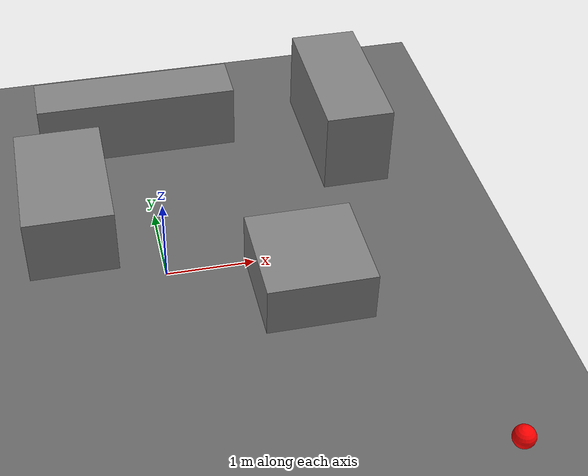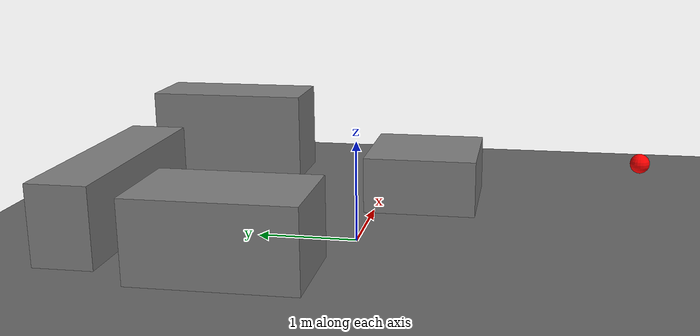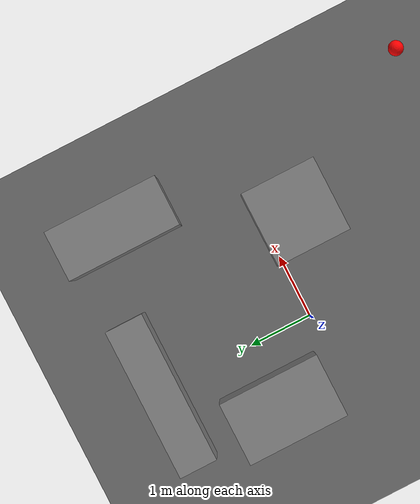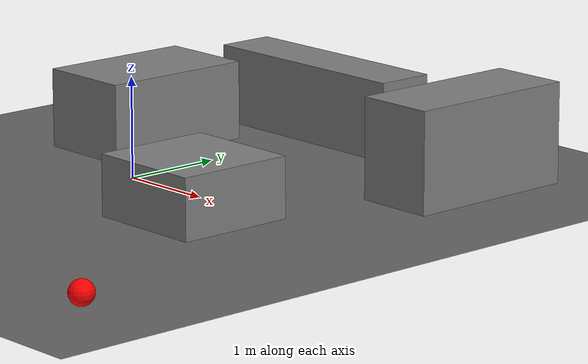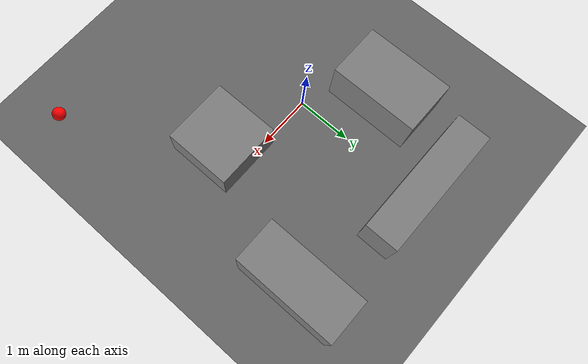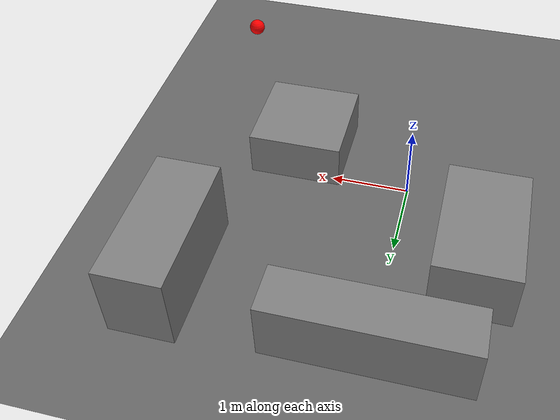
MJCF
<mujoco model="sample_room">
  <worldbody>
    <geom name="floor" type="plane" size="4 4 0.1" pos="0 0 0" rgba="0.4 0.4 0.4 1"/>
    <body name="shelf"   pos="-1 1 0.4"><geom type="box" size="0.5 0.8 0.4"/></body>
    <body name="crate"   pos="1.5 -0.5 0.3"><geom type="box" size="0.6 0.6 0.3"/></body>
    <body name="counter" pos="0 2.5 0.4"><geom type="box" size="1.2 0.3 0.4"/></body>
    <body name="pillar"  pos="2.5 2 0.5"><geom type="box" size="0.4 0.9 0.5"/></body>
    <body name="red_ball" pos="3 -3 0.12"><geom type="sphere" size="0.12" rgba="1 0 0 1"/></body>
  </worldbody>
</mujoco>
